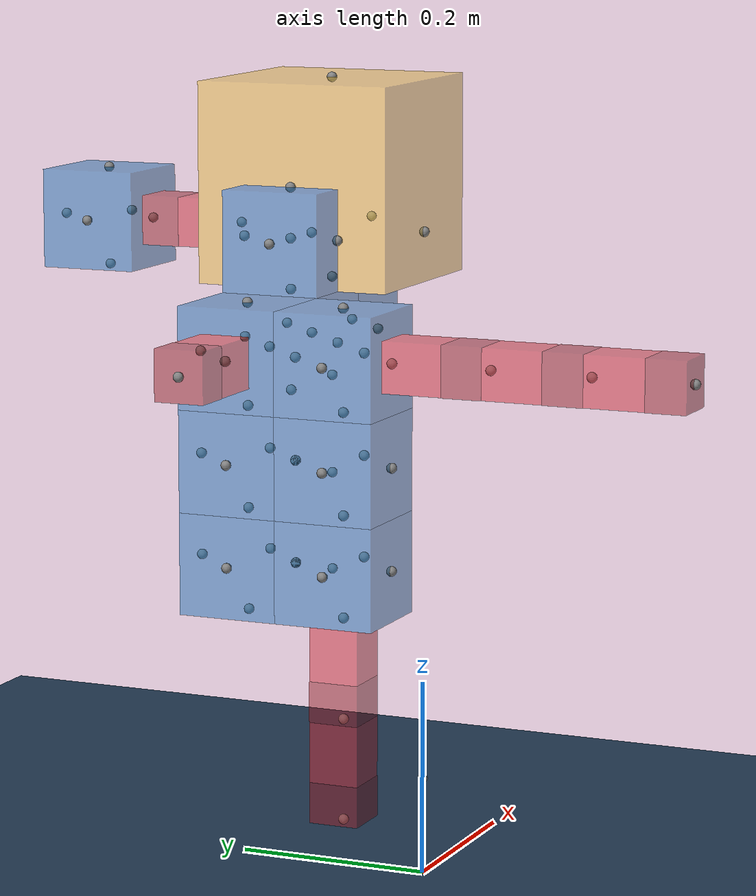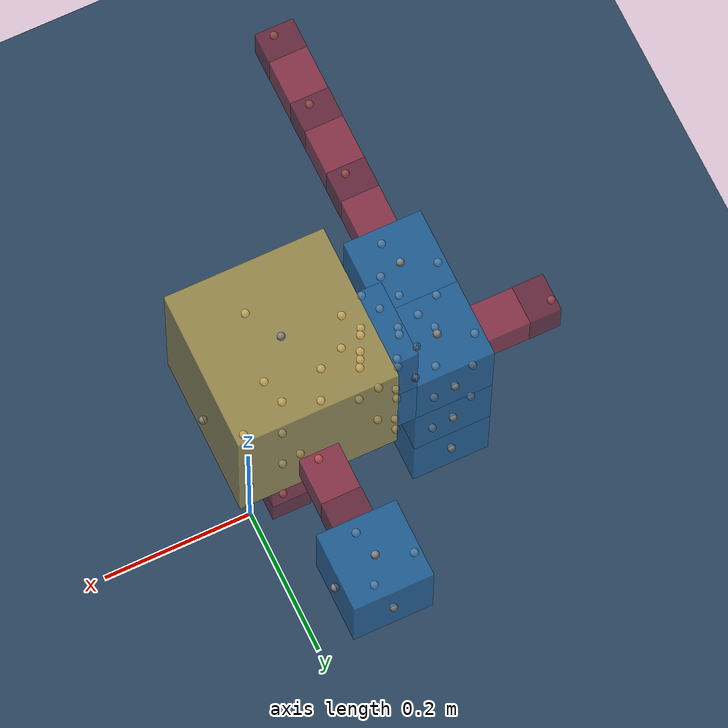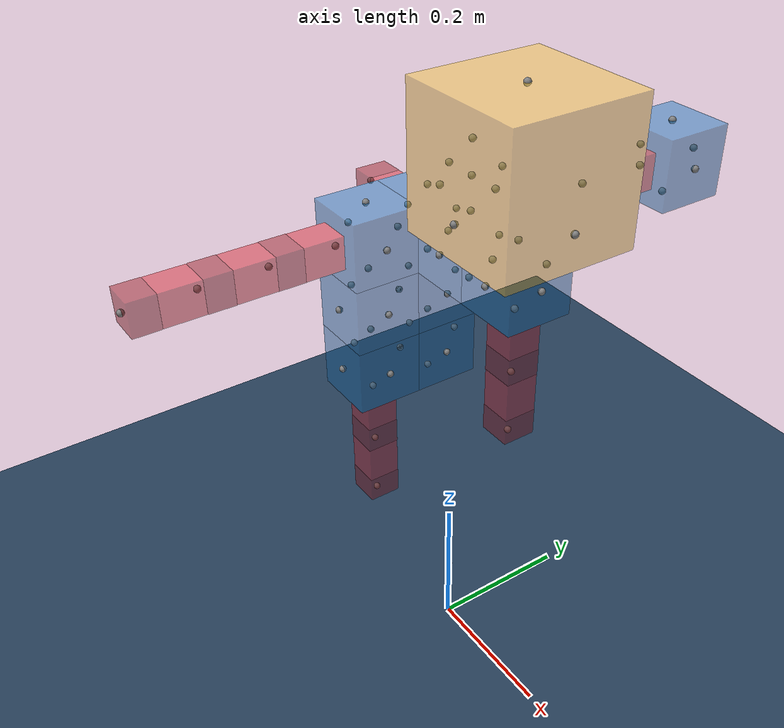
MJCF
<mujoco model="Simple Flat World">
  <compiler angle="radian"/>

  <option integrator="implicitfast"/>

  <visual>
    <global offwidth="1280" offheight="960"/>
  </visual>

  <default>
    <default class="robot1_main">
      <default class="robot1_0-11-5-main"/>
      <default class="robot1_0-15-0-main"/>
      <default class="robot1_11-2-2-main">
        <default class="robot1_11-2-2-2-1-0-main">
          <default class="robot1_11-2-2-2-1-0-1-9-2-main"/>
          <default class="robot1_11-2-2-2-1-0-1-14-5-main"/>
          <default class="robot1_11-2-2-2-1-0-1-13-0-main"/>
        </default>
        <default class="robot1_11-2-2-2-17-3-main"/>
        <default class="robot1_11-2-2-9-8-0-main"/>
      </default>
      <default class="robot1_11-18-0-main"/>
      <default class="robot1_14-5-0-main">
        <default class="robot1_14-5-0-5-12-0-main"/>
        <default class="robot1_14-5-0-12-7-0-main"/>
      </default>
      <default class="robot1_14-19-5-main"/>
      <default class="robot1_15-3-0-main"/>
      <default class="robot1_18-4-0-main"/>
      <default class="robot1_19-6-0-main">
        <default class="robot1_19-6-0-6-16-0-main"/>
        <default class="robot1_19-6-0-16-10-0-main"/>
      </default>
    </default>
  </default>

  <asset>
    <texture type="2d" colorspace="auto" name="floor" builtin="checker" rgb1="0.1 0.2 0.3" rgb2="0.2 0.3 0.4" width="600" height="600"/>
    <material name="floor" texture="floor" texuniform="true" texrepeat="3 3"/>
  </asset>

  <worldbody>
    <site pos="0 0 0.1"/>
    <camera name="ortho-cam" pos="-5 0 5" quat="0.653281 0.270598 -0.270598 -0.653281" orthographic="true" fovy="5"/>
    <light name="light" pos="0 0 1" dir="0 0 -1" type="directional" castshadow="false"/>
    <body name="floor">
      <geom name="floor" size="5 5 0.5" type="plane" material="floor"/>
    </body>
    <body name="robot1_world" pos="0 0 0.71">
      <joint type="free"/>
      <body name="robot1_core">
        <geom name="robot1_core" size="0.1 0.1 0.1" pos="0 0.1 0" type="box" mass="1" rgba="0.992157 0.792157 0.25098 0.5"/>
        <site name="robot1_core-front" pos="0 0.2 -0.05"/>
        <site name="robot1_core-back" pos="0 0 -0.05" quat="0 0 0 1"/>
        <site name="robot1_core-left" pos="-0.1 0.1 -0.05" quat="0.707107 0 0 0.707107"/>
        <site name="robot1_core-right" pos="0.1 0.1 -0.05" quat="-0.707107 0 0 0.707107"/>
        <site name="robot1_core-top" pos="0 0.1 0.1" quat="0.707107 0.707107 0 0"/>
        <site name="robot1_core-bottom" pos="0 0.1 -0.1" quat="0 0 -0.707107 0.707107"/>
        <body name="robot1_0-11-5-brick" pos="0 0.1 -0.1" quat="0 0 -0.707107 0.707107">
          <geom name="robot1_0-11-5-brick" size="0.05 0.05 0.05" pos="0 0.05 0" type="box" mass="0.055" rgba="0.109804 0.466667 0.764706 0.5"/>
          <site name="robot1_0-11-5-brick-front" pos="0 0.1 0"/>
          <site name="robot1_0-11-5-brick-left" pos="-0.05 0.05 0" quat="0.707107 0 0 0.707107"/>
          <site name="robot1_0-11-5-brick-right" pos="0.05 0.05 0" quat="-0.707107 0 0 0.707107"/>
          <site name="robot1_0-11-5-brick-top" pos="0 0.05 0.05" quat="0.707107 0.707107 0 0"/>
          <site name="robot1_0-11-5-brick-bottom" pos="0 0.05 -0.05" quat="0 0 -0.707107 0.707107"/>
          <body name="robot1_11-2-2-brick" pos="0.05 0.05 0" quat="0 -0.707107 -0.707107 0">
            <geom name="robot1_11-2-2-brick" size="0.05 0.05 0.05" pos="0 0.05 0" type="box" mass="0.055" rgba="0.109804 0.466667 0.764706 0.5"/>
            <site name="robot1_11-2-2-brick-front" pos="0 0.1 0"/>
            <site name="robot1_11-2-2-brick-left" pos="-0.05 0.05 0" quat="0.707107 0 0 0.707107"/>
            <site name="robot1_11-2-2-brick-right" pos="0.05 0.05 0" quat="-0.707107 0 0 0.707107"/>
            <site name="robot1_11-2-2-brick-top" pos="0 0.05 0.05" quat="0.707107 0.707107 0 0"/>
            <site name="robot1_11-2-2-brick-bottom" pos="0 0.05 -0.05" quat="0 0 -0.707107 0.707107"/>
            <body name="robot1_11-2-2-2-1-0-brick" pos="0 0.1 0">
              <geom name="robot1_11-2-2-2-1-0-brick" size="0.05 0.05 0.05" pos="0 0.05 0" type="box" mass="0.055" rgba="0.109804 0.466667 0.764706 0.5"/>
              <site name="robot1_11-2-2-2-1-0-brick-front" pos="0 0.1 0"/>
              <site name="robot1_11-2-2-2-1-0-brick-left" pos="-0.05 0.05 0" quat="0.707107 0 0 0.707107"/>
              <site name="robot1_11-2-2-2-1-0-brick-right" pos="0.05 0.05 0" quat="-0.707107 0 0 0.707107"/>
              <site name="robot1_11-2-2-2-1-0-brick-top" pos="0 0.05 0.05" quat="0.707107 0.707107 0 0"/>
              <site name="robot1_11-2-2-2-1-0-brick-bottom" pos="0 0.05 -0.05" quat="0 0 -0.707107 0.707107"/>
              <body name="robot1_11-2-2-2-1-0-1-9-2-brick" pos="0.05 0.05 0" quat="0.5 -0.5 -0.5 -0.5">
                <geom name="robot1_11-2-2-2-1-0-1-9-2-brick" size="0.05 0.05 0.05" pos="0 0.05 0" type="box" mass="0.055" rgba="0.109804 0.466667 0.764706 0.5"/>
                <site name="robot1_11-2-2-2-1-0-1-9-2-brick-front" pos="0 0.1 0"/>
                <site name="robot1_11-2-2-2-1-0-1-9-2-brick-left" pos="-0.05 0.05 0" quat="0.707107 0 0 0.707107"/>
                <site name="robot1_11-2-2-2-1-0-1-9-2-brick-right" pos="0.05 0.05 0" quat="-0.707107 0 0 0.707107"/>
                <site name="robot1_11-2-2-2-1-0-1-9-2-brick-top" pos="0 0.05 0.05" quat="0.707107 0.707107 0 0"/>
                <site name="robot1_11-2-2-2-1-0-1-9-2-brick-bottom" pos="0 0.05 -0.05" quat="0 0 -0.707107 0.707107"/>
                <body name="robot1_11-2-2-9-8-0-brick" pos="0 0.1 0">
                  <geom name="robot1_11-2-2-9-8-0-brick" size="0.05 0.05 0.05" pos="0 0.05 0" type="box" mass="0.055" rgba="0.109804 0.466667 0.764706 0.5"/>
                  <site name="robot1_11-2-2-9-8-0-brick-front" pos="0 0.1 0"/>
                  <site name="robot1_11-2-2-9-8-0-brick-left" pos="-0.05 0.05 0" quat="0.707107 0 0 0.707107"/>
                  <site name="robot1_11-2-2-9-8-0-brick-right" pos="0.05 0.05 0" quat="-0.707107 0 0 0.707107"/>
                  <site name="robot1_11-2-2-9-8-0-brick-top" pos="0 0.05 0.05" quat="0.707107 0.707107 0 0"/>
                  <site name="robot1_11-2-2-9-8-0-brick-bottom" pos="0 0.05 -0.05" quat="0 0 -0.707107 0.707107"/>
                </body>
              </body>
              <body name="robot1_11-2-2-2-1-0-1-14-5-brick" pos="0 0.05 -0.05" quat="0.5 -0.5 -0.5 0.5">
                <geom name="robot1_11-2-2-2-1-0-1-14-5-brick" size="0.05 0.05 0.05" pos="0 0.05 0" type="box" mass="0.055" rgba="0.109804 0.466667 0.764706 0.5"/>
                <site name="robot1_11-2-2-2-1-0-1-14-5-brick-front" pos="0 0.1 0"/>
                <site name="robot1_11-2-2-2-1-0-1-14-5-brick-left" pos="-0.05 0.05 0" quat="0.707107 0 0 0.707107"/>
                <site name="robot1_11-2-2-2-1-0-1-14-5-brick-right" pos="0.05 0.05 0" quat="-0.707107 0 0 0.707107"/>
                <site name="robot1_11-2-2-2-1-0-1-14-5-brick-top" pos="0 0.05 0.05" quat="0.707107 0.707107 0 0"/>
                <site name="robot1_11-2-2-2-1-0-1-14-5-brick-bottom" pos="0 0.05 -0.05" quat="0 0 -0.707107 0.707107"/>
                <body name="robot1_14-5-0-hinge" pos="0 0.1 0">
                  <body name="robot1_14-5-0-stator" pos="0 0.03 0">
                    <geom name="robot1_14-5-0-stator" size="0.02475 0.0297 0.02475" type="box" mass="0.02" rgba="0.87451 0.160784 0.207843 0.5"/>
                  </body>
                  <body name="robot1_14-5-0-rotor" pos="0 0.08 0">
                    <joint name="robot1_14-5-0-servo" pos="0 -0.02 0" axis="0 0 1"/>
                    <geom name="robot1_14-5-0-rotor" size="0.025 0.02 0.025" type="box" mass="0.04" rgba="0.627451 0.0941176 0.129412 0.5"/>
                    <site name="robot1_14-5-0-hinge-front" pos="0 0.02 0"/>
                    <body name="robot1_14-5-0-5-12-0-hinge" pos="0 0.02 0" quat="0 0 1 0">
                      <body name="robot1_14-5-0-5-12-0-stator" pos="0 0.03 0">
                        <geom name="robot1_14-5-0-5-12-0-stator" size="0.02475 0.0297 0.02475" type="box" mass="0.02" rgba="0.87451 0.160784 0.207843 0.5"/>
                      </body>
                      <body name="robot1_14-5-0-5-12-0-rotor" pos="0 0.08 0">
                        <joint name="robot1_14-5-0-5-12-0-servo" pos="0 -0.02 0" axis="0 0 1"/>
                        <geom name="robot1_14-5-0-5-12-0-rotor" size="0.025 0.02 0.025" type="box" mass="0.04" rgba="0.627451 0.0941176 0.129412 0.5"/>
                        <site name="robot1_14-5-0-5-12-0-hinge-front" pos="0 0.02 0"/>
                        <body name="robot1_14-5-0-12-7-0-hinge" pos="0 0.02 0" quat="0 0 1 0">
                          <body name="robot1_14-5-0-12-7-0-stator" pos="0 0.03 0">
                            <geom name="robot1_14-5-0-12-7-0-stator" size="0.02475 0.0297 0.02475" type="box" mass="0.02" rgba="0.87451 0.160784 0.207843 0.5"/>
                          </body>
                          <body name="robot1_14-5-0-12-7-0-rotor" pos="0 0.08 0">
                            <joint name="robot1_14-5-0-12-7-0-servo" pos="0 -0.02 0" axis="0 0 1"/>
                            <geom name="robot1_14-5-0-12-7-0-rotor" size="0.025 0.02 0.025" type="box" mass="0.04" rgba="0.627451 0.0941176 0.129412 0.5"/>
                            <site name="robot1_14-5-0-12-7-0-hinge-front" pos="0 0.02 0"/>
                          </body>
                        </body>
                      </body>
                    </body>
                  </body>
                </body>
                <body name="robot1_14-19-5-brick" pos="0 0.05 -0.05" quat="0.5 -0.5 -0.5 0.5">
                  <geom name="robot1_14-19-5-brick" size="0.05 0.05 0.05" pos="0 0.05 0" type="box" mass="0.055" rgba="0.109804 0.466667 0.764706 0.5"/>
                  <site name="robot1_14-19-5-brick-front" pos="0 0.1 0"/>
                  <site name="robot1_14-19-5-brick-left" pos="-0.05 0.05 0" quat="0.707107 0 0 0.707107"/>
                  <site name="robot1_14-19-5-brick-right" pos="0.05 0.05 0" quat="-0.707107 0 0 0.707107"/>
                  <site name="robot1_14-19-5-brick-top" pos="0 0.05 0.05" quat="0.707107 0.707107 0 0"/>
                  <site name="robot1_14-19-5-brick-bottom" pos="0 0.05 -0.05" quat="0 0 -0.707107 0.707107"/>
                  <body name="robot1_19-6-0-brick" pos="0 0.1 0" quat="0.707107 0 0.707107 0">
                    <geom name="robot1_19-6-0-brick" size="0.05 0.05 0.05" pos="0 0.05 0" type="box" mass="0.055" rgba="0.109804 0.466667 0.764706 0.5"/>
                    <site name="robot1_19-6-0-brick-front" pos="0 0.1 0"/>
                    <site name="robot1_19-6-0-brick-left" pos="-0.05 0.05 0" quat="0.707107 0 0 0.707107"/>
                    <site name="robot1_19-6-0-brick-right" pos="0.05 0.05 0" quat="-0.707107 0 0 0.707107"/>
                    <site name="robot1_19-6-0-brick-top" pos="0 0.05 0.05" quat="0.707107 0.707107 0 0"/>
                    <site name="robot1_19-6-0-brick-bottom" pos="0 0.05 -0.05" quat="0 0 -0.707107 0.707107"/>
                    <body name="robot1_19-6-0-6-16-0-hinge" pos="0 0.1 0" quat="-0.707107 0 0.707107 0">
                      <body name="robot1_19-6-0-6-16-0-stator" pos="0 0.03 0">
                        <geom name="robot1_19-6-0-6-16-0-stator" size="0.02475 0.0297 0.02475" type="box" mass="0.02" rgba="0.87451 0.160784 0.207843 0.5"/>
                      </body>
                      <body name="robot1_19-6-0-6-16-0-rotor" pos="0 0.08 0">
                        <joint name="robot1_19-6-0-6-16-0-servo" pos="0 -0.02 0" axis="0 0 1"/>
                        <geom name="robot1_19-6-0-6-16-0-rotor" size="0.025 0.02 0.025" type="box" mass="0.04" rgba="0.627451 0.0941176 0.129412 0.5"/>
                        <site name="robot1_19-6-0-6-16-0-hinge-front" pos="0 0.02 0"/>
                        <body name="robot1_19-6-0-16-10-0-hinge" pos="0 0.02 0" quat="-0.707107 0 0.707107 0">
                          <body name="robot1_19-6-0-16-10-0-stator" pos="0 0.03 0">
                            <geom name="robot1_19-6-0-16-10-0-stator" size="0.02475 0.0297 0.02475" type="box" mass="0.02" rgba="0.87451 0.160784 0.207843 0.5"/>
                          </body>
                          <body name="robot1_19-6-0-16-10-0-rotor" pos="0 0.08 0">
                            <joint name="robot1_19-6-0-16-10-0-servo" pos="0 -0.02 0" axis="0 0 1"/>
                            <geom name="robot1_19-6-0-16-10-0-rotor" size="0.025 0.02 0.025" type="box" mass="0.04" rgba="0.627451 0.0941176 0.129412 0.5"/>
                            <site name="robot1_19-6-0-16-10-0-hinge-front" pos="0 0.02 0"/>
                          </body>
                        </body>
                      </body>
                    </body>
                  </body>
                </body>
              </body>
              <body name="robot1_11-2-2-2-1-0-1-13-0-hinge" pos="0 0.1 0">
                <body name="robot1_11-2-2-2-1-0-1-13-0-stator" pos="0 0.03 0">
                  <geom name="robot1_11-2-2-2-1-0-1-13-0-stator" size="0.02475 0.0297 0.02475" type="box" mass="0.02" rgba="0.87451 0.160784 0.207843 0.5"/>
                </body>
                <body name="robot1_11-2-2-2-1-0-1-13-0-rotor" pos="0 0.08 0">
                  <joint name="robot1_11-2-2-2-1-0-1-13-0-servo" pos="0 -0.02 0" axis="0 0 1"/>
                  <geom name="robot1_11-2-2-2-1-0-1-13-0-rotor" size="0.025 0.02 0.025" type="box" mass="0.04" rgba="0.627451 0.0941176 0.129412 0.5"/>
                  <site name="robot1_11-2-2-2-1-0-1-13-0-hinge-front" pos="0 0.02 0"/>
                </body>
              </body>
            </body>
            <body name="robot1_11-2-2-2-17-3-brick" pos="-0.05 0.05 0" quat="0 -0.707107 0.707107 0">
              <geom name="robot1_11-2-2-2-17-3-brick" size="0.05 0.05 0.05" pos="0 0.05 0" type="box" mass="0.055" rgba="0.109804 0.466667 0.764706 0.5"/>
              <site name="robot1_11-2-2-2-17-3-brick-front" pos="0 0.1 0"/>
              <site name="robot1_11-2-2-2-17-3-brick-left" pos="-0.05 0.05 0" quat="0.707107 0 0 0.707107"/>
              <site name="robot1_11-2-2-2-17-3-brick-right" pos="0.05 0.05 0" quat="-0.707107 0 0 0.707107"/>
              <site name="robot1_11-2-2-2-17-3-brick-top" pos="0 0.05 0.05" quat="0.707107 0.707107 0 0"/>
              <site name="robot1_11-2-2-2-17-3-brick-bottom" pos="0 0.05 -0.05" quat="0 0 -0.707107 0.707107"/>
            </body>
          </body>
          <body name="robot1_11-18-0-hinge" pos="0 0.1 0" quat="-0.707107 0 0.707107 0">
            <body name="robot1_11-18-0-stator" pos="0 0.03 0">
              <geom name="robot1_11-18-0-stator" size="0.02475 0.0297 0.02475" type="box" mass="0.02" rgba="0.87451 0.160784 0.207843 0.5"/>
            </body>
            <body name="robot1_11-18-0-rotor" pos="0 0.08 0">
              <joint name="robot1_11-18-0-servo" pos="0 -0.02 0" axis="0 0 1"/>
              <geom name="robot1_11-18-0-rotor" size="0.025 0.02 0.025" type="box" mass="0.04" rgba="0.627451 0.0941176 0.129412 0.5"/>
              <site name="robot1_11-18-0-hinge-front" pos="0 0.02 0"/>
              <body name="robot1_18-4-0-hinge" pos="0 0.02 0">
                <body name="robot1_18-4-0-stator" pos="0 0.03 0">
                  <geom name="robot1_18-4-0-stator" size="0.02475 0.0297 0.02475" type="box" mass="0.02" rgba="0.87451 0.160784 0.207843 0.5"/>
                </body>
                <body name="robot1_18-4-0-rotor" pos="0 0.08 0">
                  <joint name="robot1_18-4-0-servo" pos="0 -0.02 0" axis="0 0 1"/>
                  <geom name="robot1_18-4-0-rotor" size="0.025 0.02 0.025" type="box" mass="0.04" rgba="0.627451 0.0941176 0.129412 0.5"/>
                  <site name="robot1_18-4-0-hinge-front" pos="0 0.02 0"/>
                </body>
              </body>
            </body>
          </body>
        </body>
        <body name="robot1_0-15-0-hinge" pos="0 0.2 -0.05" quat="0.707107 0 0.707107 0">
          <body name="robot1_0-15-0-stator" pos="0 0.03 0">
            <geom name="robot1_0-15-0-stator" size="0.02475 0.0297 0.02475" type="box" mass="0.02" rgba="0.87451 0.160784 0.207843 0.5"/>
          </body>
          <body name="robot1_0-15-0-rotor" pos="0 0.08 0">
            <joint name="robot1_0-15-0-servo" pos="0 -0.02 0" axis="0 0 1"/>
            <geom name="robot1_0-15-0-rotor" size="0.025 0.02 0.025" type="box" mass="0.04" rgba="0.627451 0.0941176 0.129412 0.5"/>
            <site name="robot1_0-15-0-hinge-front" pos="0 0.02 0"/>
            <body name="robot1_15-3-0-brick" pos="0 0.02 0" quat="0 0 1 0">
              <geom name="robot1_15-3-0-brick" size="0.05 0.05 0.05" pos="0 0.05 0" type="box" mass="0.055" rgba="0.109804 0.466667 0.764706 0.5"/>
              <site name="robot1_15-3-0-brick-front" pos="0 0.1 0"/>
              <site name="robot1_15-3-0-brick-left" pos="-0.05 0.05 0" quat="0.707107 0 0 0.707107"/>
              <site name="robot1_15-3-0-brick-right" pos="0.05 0.05 0" quat="-0.707107 0 0 0.707107"/>
              <site name="robot1_15-3-0-brick-top" pos="0 0.05 0.05" quat="0.707107 0.707107 0 0"/>
              <site name="robot1_15-3-0-brick-bottom" pos="0 0.05 -0.05" quat="0 0 -0.707107 0.707107"/>
            </body>
          </body>
        </body>
      </body>
    </body>
  </worldbody>

  <contact>
    <exclude body1="robot1_14-5-0-stator" body2="robot1_14-5-0-rotor"/>
    <exclude body1="robot1_14-5-0-5-12-0-stator" body2="robot1_14-5-0-5-12-0-rotor"/>
    <exclude body1="robot1_14-5-0-12-7-0-stator" body2="robot1_14-5-0-12-7-0-rotor"/>
    <exclude body1="robot1_19-6-0-6-16-0-stator" body2="robot1_19-6-0-6-16-0-rotor"/>
    <exclude body1="robot1_19-6-0-16-10-0-stator" body2="robot1_19-6-0-16-10-0-rotor"/>
    <exclude body1="robot1_11-2-2-2-1-0-1-13-0-stator" body2="robot1_11-2-2-2-1-0-1-13-0-rotor"/>
    <exclude body1="robot1_11-18-0-stator" body2="robot1_11-18-0-rotor"/>
    <exclude body1="robot1_18-4-0-stator" body2="robot1_18-4-0-rotor"/>
    <exclude body1="robot1_0-15-0-stator" body2="robot1_0-15-0-rotor"/>
  </contact>

  <actuator>
    <general name="robot1_0-15-0-servo" joint="robot1_0-15-0-servo" ctrlrange="-1.5708 1.5708" dynprm="0 0 0 0 0 0 0 0 0 0" biastype="affine" biasprm="0 -1 -1"/>
    <general name="robot1_11-2-2-2-1-0-1-13-0-servo" joint="robot1_11-2-2-2-1-0-1-13-0-servo" ctrlrange="-1.5708 1.5708" dynprm="0 0 0 0 0 0 0 0 0 0" biastype="affine" biasprm="0 -1 -1"/>
    <general name="robot1_11-18-0-servo" joint="robot1_11-18-0-servo" ctrlrange="-1.5708 1.5708" dynprm="0 0 0 0 0 0 0 0 0 0" biastype="affine" biasprm="0 -1 -1"/>
    <general name="robot1_14-5-0-servo" joint="robot1_14-5-0-servo" ctrlrange="-1.5708 1.5708" dynprm="0 0 0 0 0 0 0 0 0 0" biastype="affine" biasprm="0 -1 -1"/>
    <general name="robot1_14-5-0-5-12-0-servo" joint="robot1_14-5-0-5-12-0-servo" ctrlrange="-1.5708 1.5708" dynprm="0 0 0 0 0 0 0 0 0 0" biastype="affine" biasprm="0 -1 -1"/>
    <general name="robot1_14-5-0-12-7-0-servo" joint="robot1_14-5-0-12-7-0-servo" ctrlrange="-1.5708 1.5708" dynprm="0 0 0 0 0 0 0 0 0 0" biastype="affine" biasprm="0 -1 -1"/>
    <general name="robot1_18-4-0-servo" joint="robot1_18-4-0-servo" ctrlrange="-1.5708 1.5708" dynprm="0 0 0 0 0 0 0 0 0 0" biastype="affine" biasprm="0 -1 -1"/>
    <general name="robot1_19-6-0-6-16-0-servo" joint="robot1_19-6-0-6-16-0-servo" ctrlrange="-1.5708 1.5708" dynprm="0 0 0 0 0 0 0 0 0 0" biastype="affine" biasprm="0 -1 -1"/>
    <general name="robot1_19-6-0-16-10-0-servo" joint="robot1_19-6-0-16-10-0-servo" ctrlrange="-1.5708 1.5708" dynprm="0 0 0 0 0 0 0 0 0 0" biastype="affine" biasprm="0 -1 -1"/>
  </actuator>
</mujoco>
